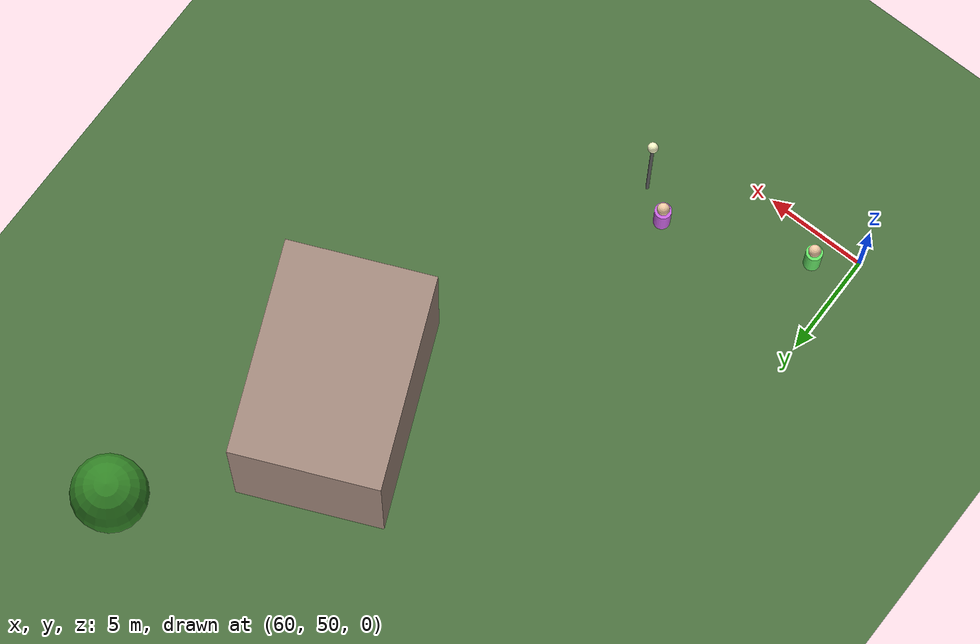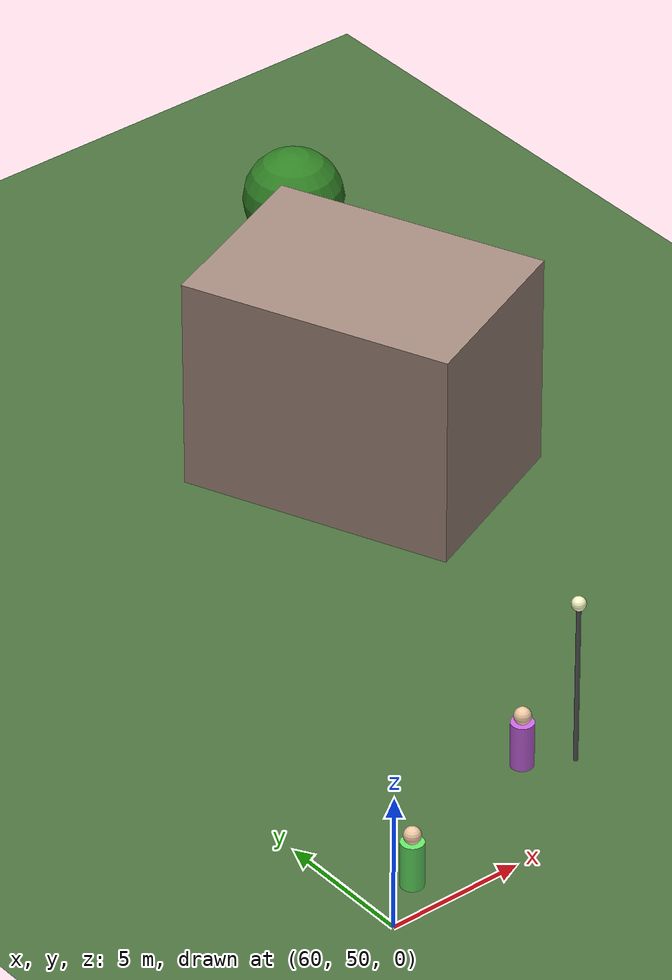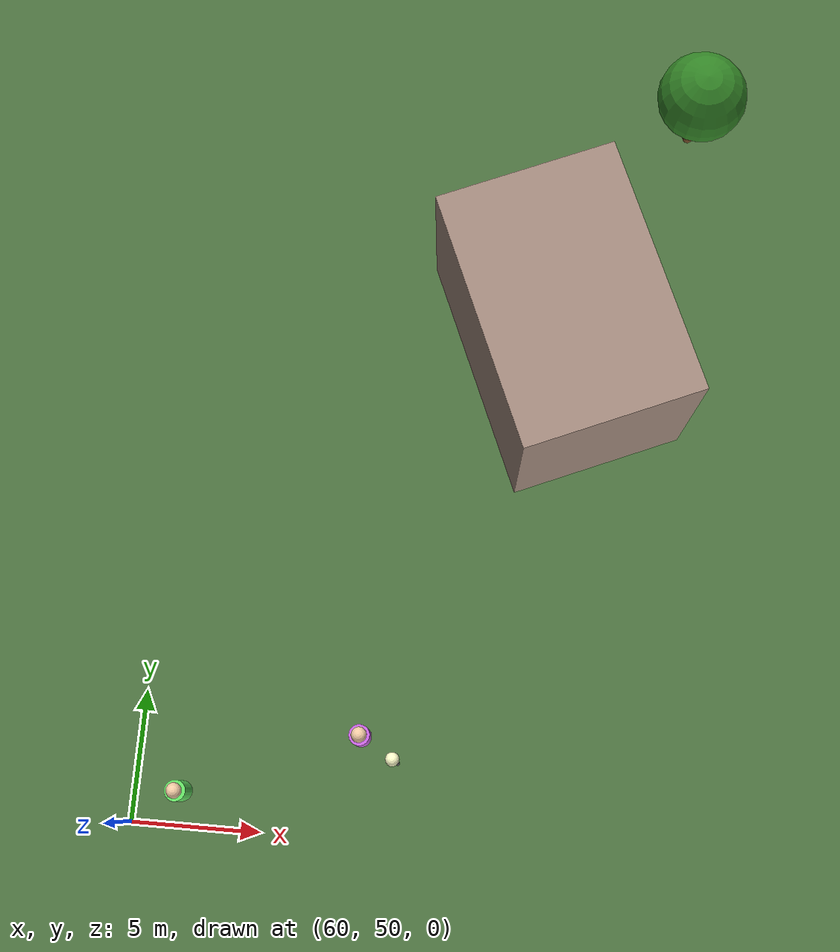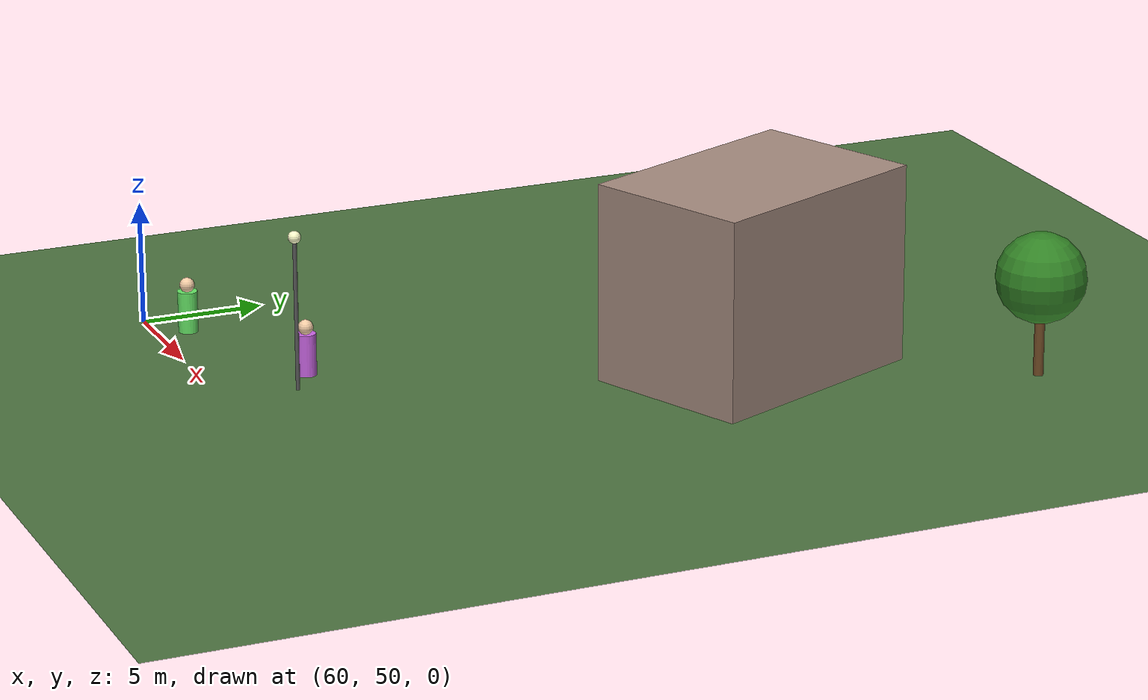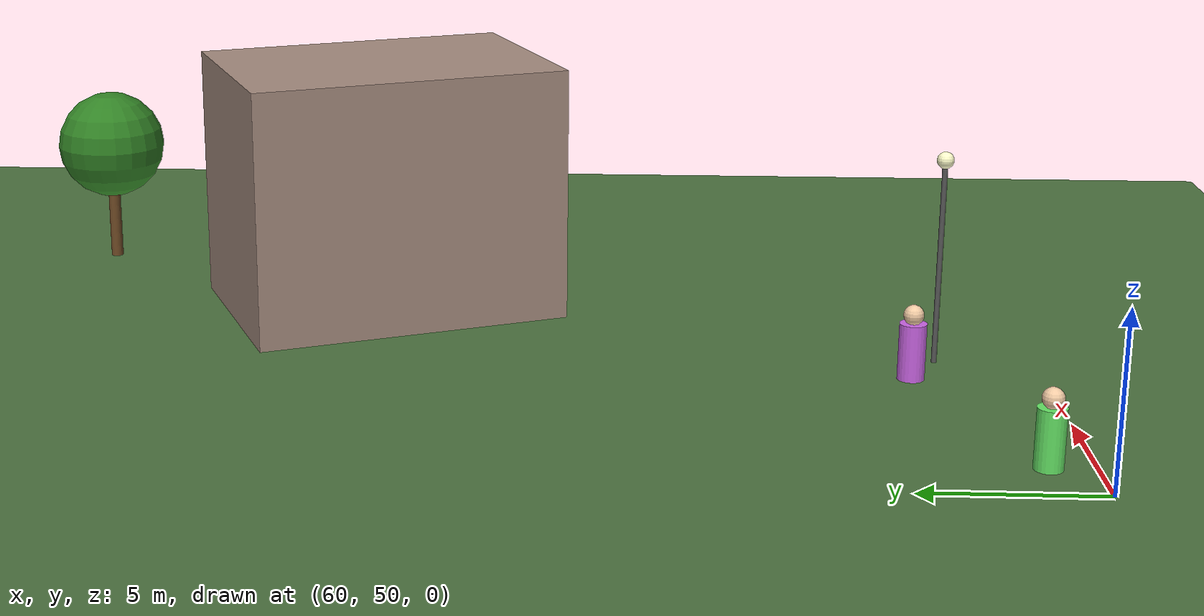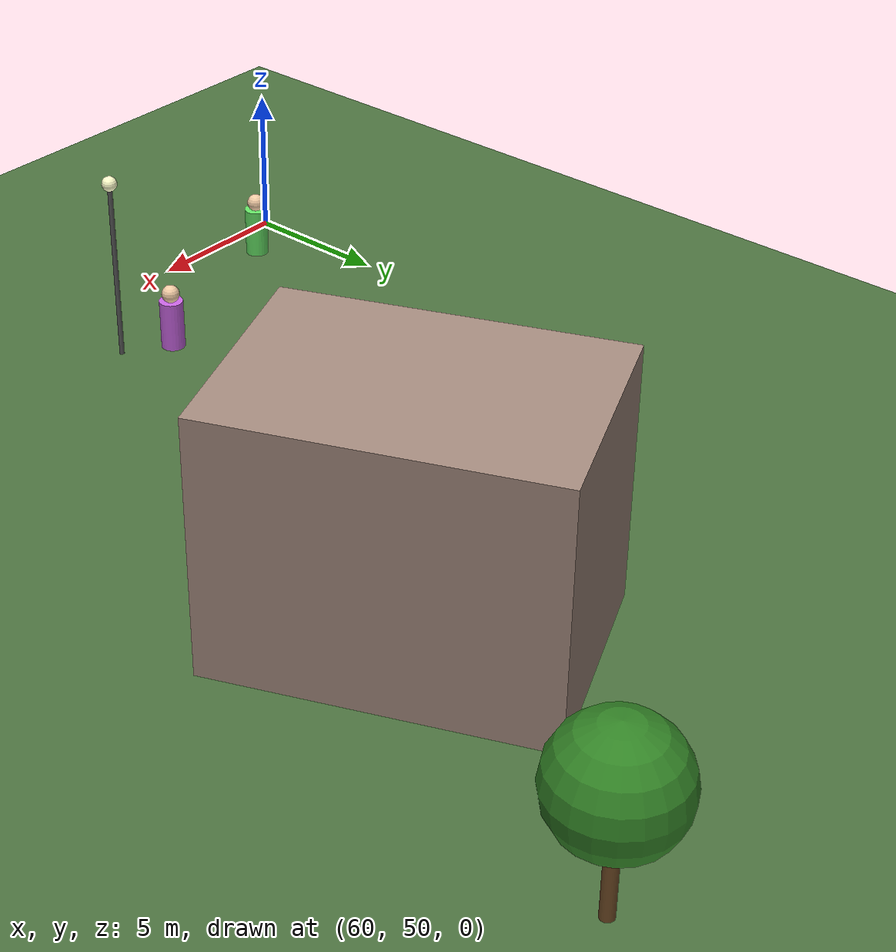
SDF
<sdf version="1.6">
 <world name="vla_6g_demo">
  <model name="ground_plane">
   <static>true</static>
   <link name="link">
    <collision name="collision">
     <geometry><plane><normal>0 0 1</normal><size>200 200</size></plane></geometry>
    </collision>
    <visual name="visual">
     <geometry><plane><normal>0 0 1</normal><size>200 200</size></plane></geometry>
     <material>
      <ambient>0.25 0.4 0.2 1</ambient>
      <diffuse>0.3 0.45 0.25 1</diffuse>
      <specular>0.05 0.05 0.05 1</specular>
     </material>
    </visual>
   </link>
   <pose>50 50 0 0 0 0</pose>
  </model>
  <model name="building_3">
   <static>true</static>
   <link name="link">
    <visual name="visual">
     <geometry><box><size>7 10 8</size></box></geometry>
     <material><ambient>0.6 0.5 0.45 1</ambient><diffuse>0.65 0.55 0.5 1</diffuse></material>
    </visual>
   </link>
   <pose>75 70 4 0 0 0.4</pose>
  </model>
  <model name="user_2">
   <static>true</static>
   <link name="link">
    <visual name="body">
     <geometry><cylinder><radius>0.4</radius><length>1.7</length></cylinder></geometry>
     <material><ambient>0.3 0.8 0.3 1</ambient><diffuse>0.4 0.9 0.4 1</diffuse></material>
    </visual>
    <visual name="head">
     <pose>0 0 1.1 0 0 0</pose>
     <geometry><sphere><radius>0.3</radius></sphere></geometry>
     <material><ambient>0.9 0.75 0.6 1</ambient><diffuse>0.95 0.8 0.65 1</diffuse></material>
    </visual>
   </link>
   <pose>61.8 51.3 0.85 0 0 2.5</pose>
  </model>
  <model name="user_4">
   <static>true</static>
   <link name="link">
    <visual name="body">
     <geometry><cylinder><radius>0.4</radius><length>1.7</length></cylinder></geometry>
     <material><ambient>0.7 0.3 0.8 1</ambient><diffuse>0.8 0.4 0.9 1</diffuse></material>
    </visual>
    <visual name="head">
     <pose>0 0 1.1 0 0 0</pose>
     <geometry><sphere><radius>0.3</radius></sphere></geometry>
     <material><ambient>0.9 0.75 0.6 1</ambient><diffuse>0.95 0.8 0.65 1</diffuse></material>
    </visual>
   </link>
   <pose>68.5 53.9 0.85 0 0 3.9</pose>
  </model>
  <model name="tree_4">
   <static>true</static>
   <link name="link">
    <visual name="trunk">
     <geometry><cylinder><radius>0.2</radius><length>3.0</length></cylinder></geometry>
     <material><ambient>0.4 0.25 0.1 1</ambient><diffuse>0.45 0.3 0.15 1</diffuse></material>
    </visual>
    <visual name="canopy">
     <pose>0 0 2.5 0 0 0</pose>
     <geometry><sphere><radius>1.8</radius></sphere></geometry>
     <material><ambient>0.15 0.42 0.1 1</ambient><diffuse>0.2 0.52 0.15 1</diffuse></material>
    </visual>
   </link>
   <pose>80 80 1.5 0 0 0</pose>
  </model>
  <model name="lamp_2">
   <static>true</static>
   <link name="link">
    <visual name="pole">
     <geometry><cylinder><radius>0.08</radius><length>6.0</length></cylinder></geometry>
     <material><ambient>0.3 0.3 0.3 1</ambient><diffuse>0.35 0.35 0.35 1</diffuse></material>
    </visual>
    <visual name="lamp">
     <pose>0 0 3.2 0 0 0</pose>
     <geometry><sphere><radius>0.25</radius></sphere></geometry>
     <material>
      <ambient>0.9 0.9 0.7 1</ambient>
      <diffuse>1.0 1.0 0.8 1</diffuse>
      <emissive>0.8 0.8 0.5 1</emissive>
     </material>
    </visual>
   </link>
   <pose>70 53 3.0 0 0 0</pose>
  </model>
 </world>
</sdf>
